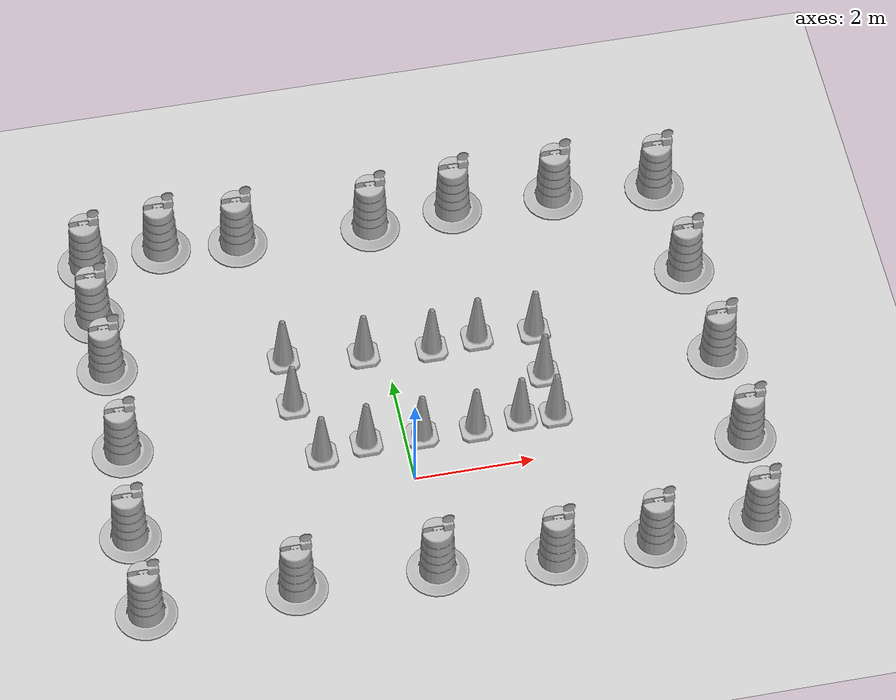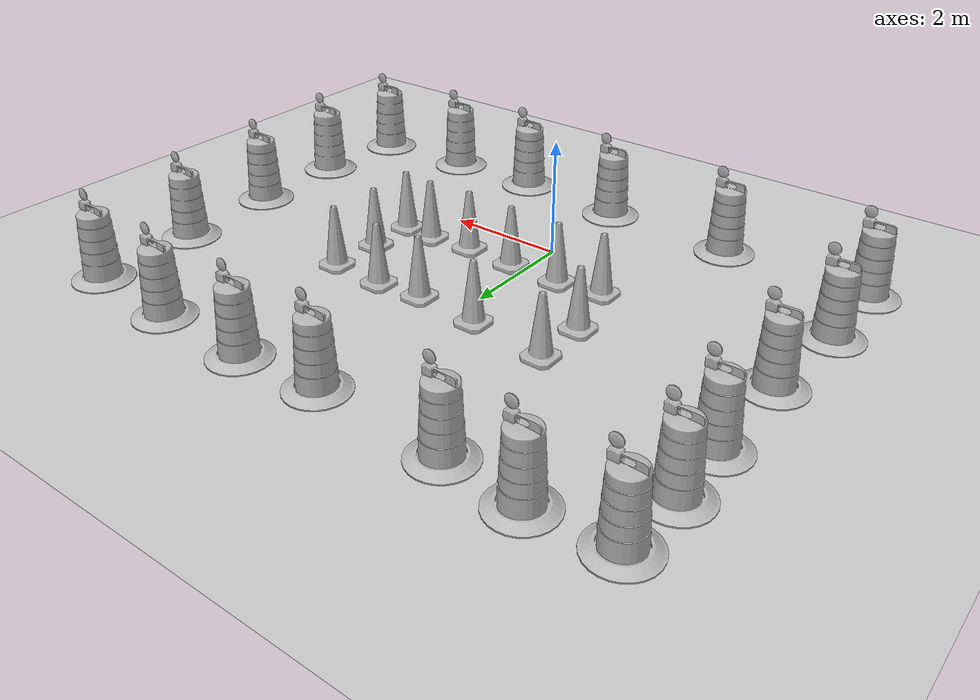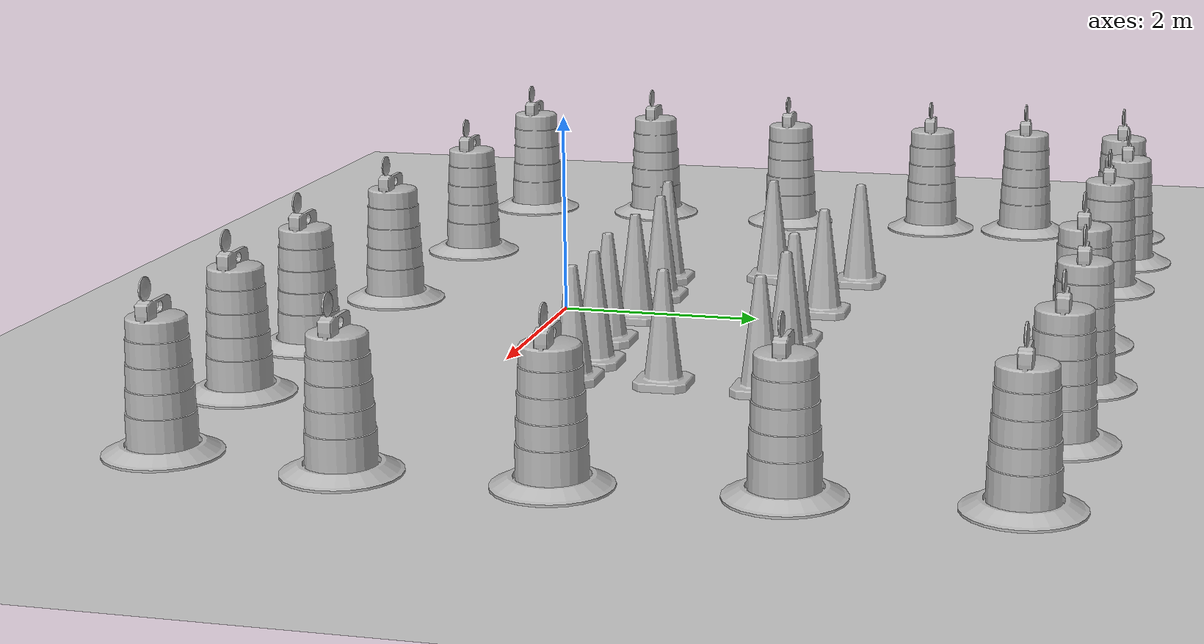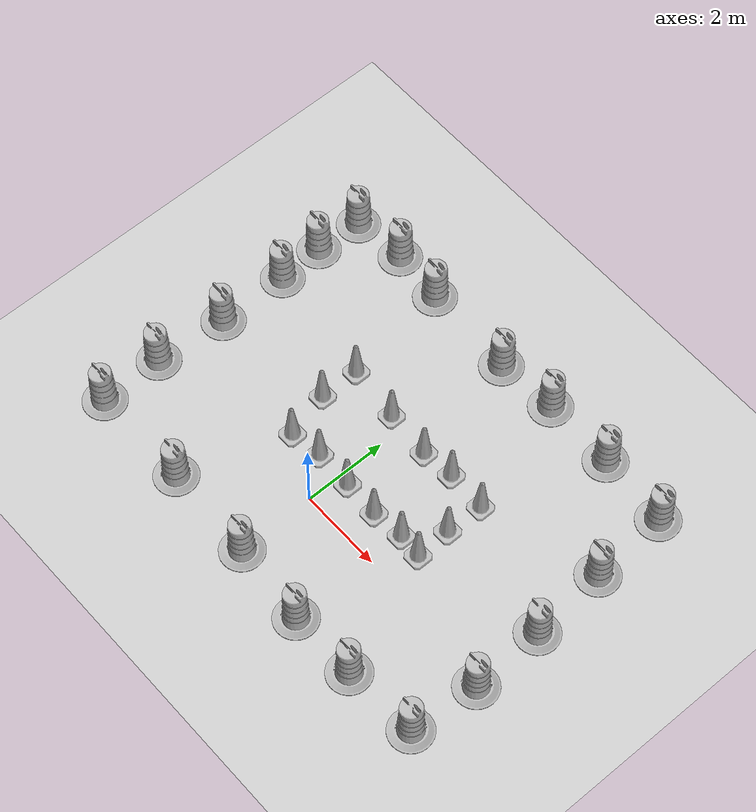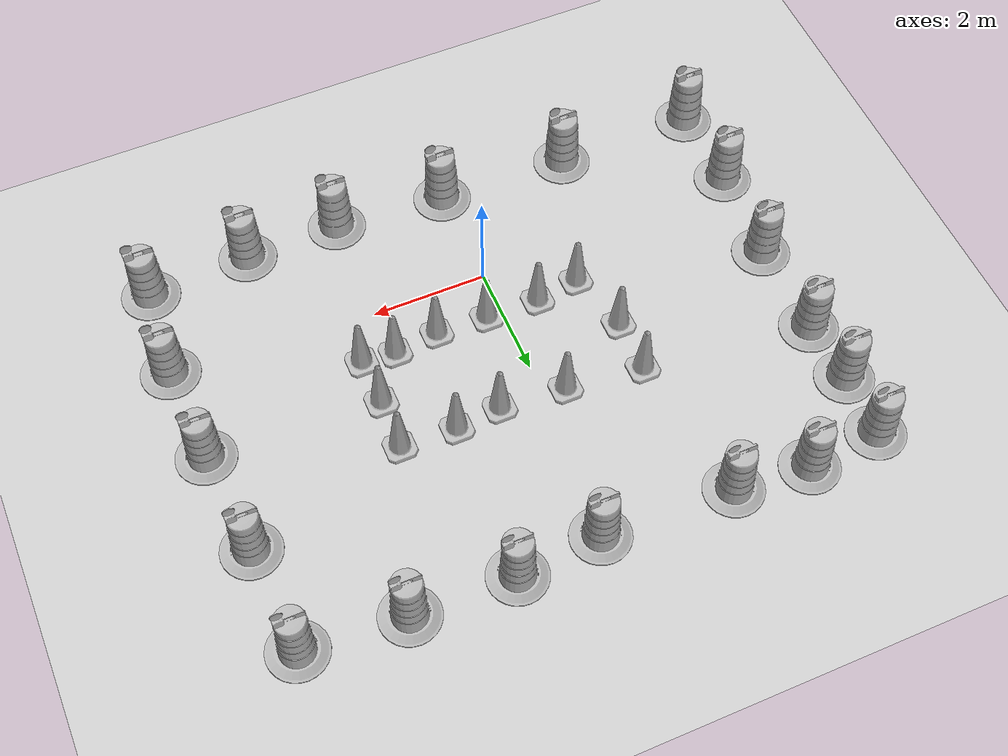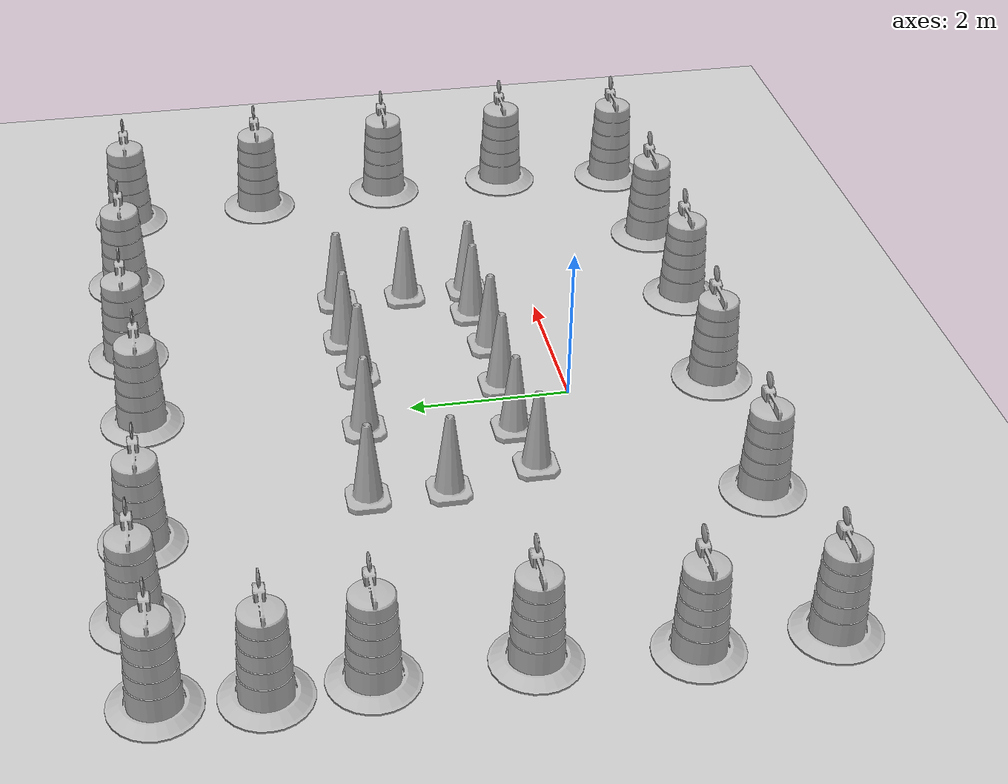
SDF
<sdf version="1.7">
 <world name="default">
  <light name="sun" type="directional">
   <pose>0 0 10 0 -0 0</pose>
   <diffuse>0.8 0.8 0.8 1</diffuse>
   <specular>0.2 0.2 0.2 1</specular>
   <attenuation>
    <range>1000</range>
    <constant>0.9</constant>
    <linear>0.01</linear>
    <quadratic>0.001</quadratic>
   </attenuation>
   <direction>-0.5 0.1 -0.9</direction>
   <spot><inner_angle>0</inner_angle><outer_angle>0</outer_angle><falloff>0</falloff></spot>
  </light>
  <model name="ground_plane">
   <static>1</static>
   <link name="link">
    <collision name="collision">
     <geometry><plane><normal>0 0 1</normal><size>100 100</size></plane></geometry>
     <surface>
      <contact><collide_bitmask>65535</collide_bitmask></contact>
      <friction><ode><mu>100</mu><mu2>50</mu2></ode></friction>
     </surface>
    </collision>
    <visual name="visual">
     <cast_shadows>0</cast_shadows>
     <geometry><plane><normal>0 0 1</normal><size>100 100</size></plane></geometry>
     <material>
      <script><uri>file://media/materials/scripts/gazebo.material</uri><name>Gazebo/Grey</name></script>
     </material>
    </visual>
   </link>
  </model>
  <gravity>0 0 -9.8</gravity>
  <magnetic_field>6e-06 2.3e-05 -4.2e-05</magnetic_field>
  <atmosphere type="adiabatic"/>
  <physics type="ode">
   <max_step_size>0.001</max_step_size>
   <real_time_factor>1</real_time_factor>
   <real_time_update_rate>1000</real_time_update_rate>
  </physics>
  <scene><ambient>0.4 0.4 0.4 1</ambient><background>0.7 0.7 0.7 1</background><shadows>1</shadows></scene>
  <spherical_coordinates>
   <surface_model>EARTH_WGS84</surface_model>
   <latitude_deg>0</latitude_deg>
   <longitude_deg>0</longitude_deg>
   <elevation>0</elevation>
   <heading_deg>0</heading_deg>
  </spherical_coordinates>
  <model name="Construction Barrel">
   <link name="link">
    <inertial>
     <pose>0 0 0.4 0 -0 0</pose>
     <mass>500</mass>
     <inertia><ixx>51.2096</ixx><iyy>51.2096</iyy><izz>25</izz><ixy>0</ixy><ixz>0</ixz><iyz>0</iyz></inertia>
    </inertial>
    <collision name="collision">
     <geometry><mesh><uri>model://construction_barrel/meshes/construction_barrel.dae</uri></mesh></geometry>
    </collision>
    <visual name="visual">
     <geometry><mesh><uri>model://construction_barrel/meshes/construction_barrel.dae</uri></mesh></geometry>
    </visual>
   </link>
   <pose>-4.64677 3.14419 -2e-06 4e-06 7e-06 -0.000134</pose>
  </model>
  <model name="Construction Barrel_0">
   <link name="link">
    <inertial>
     <pose>0 0 0.4 0 -0 0</pose>
     <mass>500</mass>
     <inertia><ixx>51.2096</ixx><iyy>51.2096</iyy><izz>25</izz><ixy>0</ixy><ixz>0</ixz><iyz>0</iyz></inertia>
    </inertial>
    <collision name="collision">
     <geometry><mesh><uri>model://construction_barrel/meshes/construction_barrel.dae</uri></mesh></geometry>
    </collision>
    <visual name="visual">
     <geometry><mesh><uri>model://construction_barrel/meshes/construction_barrel.dae</uri></mesh></geometry>
    </visual>
   </link>
   <pose>-4.64797 1.43609 0 0 -0 -0.000111</pose>
  </model>
  <model name="Construction Barrel_1">
   <link name="link">
    <inertial>
     <pose>0 0 0.4 0 -0 0</pose>
     <mass>500</mass>
     <inertia><ixx>51.2096</ixx><iyy>51.2096</iyy><izz>25</izz><ixy>0</ixy><ixz>0</ixz><iyz>0</iyz></inertia>
    </inertial>
    <collision name="collision">
     <geometry><mesh><uri>model://construction_barrel/meshes/construction_barrel.dae</uri></mesh></geometry>
    </collision>
    <visual name="visual">
     <geometry><mesh><uri>model://construction_barrel/meshes/construction_barrel.dae</uri></mesh></geometry>
    </visual>
   </link>
   <pose>3.47135 5.35729 0 0 -0 3.3e-05</pose>
  </model>
  <model name="Construction Barrel_2">
   <link name="link">
    <inertial>
     <pose>0 0 0.4 0 -0 0</pose>
     <mass>500</mass>
     <inertia><ixx>51.2096</ixx><iyy>51.2096</iyy><izz>25</izz><ixy>0</ixy><ixz>0</ixz><iyz>0</iyz></inertia>
    </inertial>
    <collision name="collision">
     <geometry><mesh><uri>model://construction_barrel/meshes/construction_barrel.dae</uri></mesh></geometry>
    </collision>
    <visual name="visual">
     <geometry><mesh><uri>model://construction_barrel/meshes/construction_barrel.dae</uri></mesh></geometry>
    </visual>
   </link>
   <pose>-2.29614 -1.78495 -4e-06 -5e-06 -7e-06 -5.4e-05</pose>
  </model>
  <model name="Construction Barrel_3">
   <link name="link">
    <inertial>
     <pose>0 0 0.4 0 -0 0</pose>
     <mass>500</mass>
     <inertia><ixx>51.2096</ixx><iyy>51.2096</iyy><izz>25</izz><ixy>0</ixy><ixz>0</ixz><iyz>0</iyz></inertia>
    </inertial>
    <collision name="collision">
     <geometry><mesh><uri>model://construction_barrel/meshes/construction_barrel.dae</uri></mesh></geometry>
    </collision>
    <visual name="visual">
     <geometry><mesh><uri>model://construction_barrel/meshes/construction_barrel.dae</uri></mesh></geometry>
    </visual>
   </link>
   <pose>0.006793 -1.8623 -1e-06 5e-06 -3e-06 -3.6e-05</pose>
  </model>
  <model name="Construction Barrel_4">
   <link name="link">
    <inertial>
     <pose>0 0 0.4 0 -0 0</pose>
     <mass>500</mass>
     <inertia><ixx>51.2096</ixx><iyy>51.2096</iyy><izz>25</izz><ixy>0</ixy><ixz>0</ixz><iyz>0</iyz></inertia>
    </inertial>
    <collision name="collision">
     <geometry><mesh><uri>model://construction_barrel/meshes/construction_barrel.dae</uri></mesh></geometry>
    </collision>
    <visual name="visual">
     <geometry><mesh><uri>model://construction_barrel/meshes/construction_barrel.dae</uri></mesh></geometry>
    </visual>
   </link>
   <pose>-4.7616 -1.78931 0 0 0 -0.000122</pose>
  </model>
  <model name="Construction Barrel_5">
   <link name="link">
    <inertial>
     <pose>0 0 0.4 0 -0 0</pose>
     <mass>500</mass>
     <inertia><ixx>51.2096</ixx><iyy>51.2096</iyy><izz>25</izz><ixy>0</ixy><ixz>0</ixz><iyz>0</iyz></inertia>
    </inertial>
    <collision name="collision">
     <geometry><mesh><uri>model://construction_barrel/meshes/construction_barrel.dae</uri></mesh></geometry>
    </collision>
    <visual name="visual">
     <geometry><mesh><uri>model://construction_barrel/meshes/construction_barrel.dae</uri></mesh></geometry>
    </visual>
   </link>
   <pose>-4.64278 5.37985 -0 0 -0 -4.8e-05</pose>
  </model>
  <model name="Construction Barrel_6">
   <link name="link">
    <inertial>
     <pose>0 0 0.4 0 -0 0</pose>
     <mass>500</mass>
     <inertia><ixx>51.2096</ixx><iyy>51.2096</iyy><izz>25</izz><ixy>0</ixy><ixz>0</ixz><iyz>0</iyz></inertia>
    </inertial>
    <collision name="collision">
     <geometry><mesh><uri>model://construction_barrel/meshes/construction_barrel.dae</uri></mesh></geometry>
    </collision>
    <visual name="visual">
     <geometry><mesh><uri>model://construction_barrel/meshes/construction_barrel.dae</uri></mesh></geometry>
    </visual>
   </link>
   <pose>-2.04519 5.38342 -1e-06 -8e-06 -2e-06 -0.000106</pose>
  </model>
  <model name="Construction Barrel_7">
   <link name="link">
    <inertial>
     <pose>0 0 0.4 0 -0 0</pose>
     <mass>500</mass>
     <inertia><ixx>51.2096</ixx><iyy>51.2096</iyy><izz>25</izz><ixy>0</ixy><ixz>0</ixz><iyz>0</iyz></inertia>
    </inertial>
    <collision name="collision">
     <geometry><mesh><uri>model://construction_barrel/meshes/construction_barrel.dae</uri></mesh></geometry>
    </collision>
    <visual name="visual">
     <geometry><mesh><uri>model://construction_barrel/meshes/construction_barrel.dae</uri></mesh></geometry>
    </visual>
   </link>
   <pose>0.245001 5.28789 -4e-06 -5e-06 -7e-06 -5.3e-05</pose>
  </model>
  <model name="Construction Cone">
   <link name="link">
    <collision name="collision">
     <geometry>
      <mesh><scale>10 10 10</scale><uri>model://construction_cone/meshes/construction_cone.dae</uri></mesh>
     </geometry>
    </collision>
    <visual name="visual">
     <geometry>
      <mesh><scale>10 10 10</scale><uri>model://construction_cone/meshes/construction_cone.dae</uri></mesh>
     </geometry>
    </visual>
    <inertial>
     <inertia><ixx>1</ixx><ixy>0</ixy><ixz>0</ixz><iyy>1</iyy><iyz>0</iyz><izz>1</izz></inertia>
     <mass>1</mass>
    </inertial>
   </link>
   <pose>-1.42727 0.725176 -0 0 -1e-06 0</pose>
  </model>
  <model name="Construction Cone_0">
   <link name="link">
    <collision name="collision">
     <geometry>
      <mesh><scale>10 10 10</scale><uri>model://construction_cone/meshes/construction_cone.dae</uri></mesh>
     </geometry>
    </collision>
    <visual name="visual">
     <geometry>
      <mesh><scale>10 10 10</scale><uri>model://construction_cone/meshes/construction_cone.dae</uri></mesh>
     </geometry>
    </visual>
    <inertial>
     <inertia><ixx>1</ixx><ixy>0</ixy><ixz>0</ixz><iyy>1</iyy><iyz>0</iyz><izz>1</izz></inertia>
     <mass>1</mass>
    </inertial>
   </link>
   <pose>-1.71742 1.82458 -1e-05 0 -0 0</pose>
  </model>
  <model name="Construction Cone_1">
   <link name="link">
    <collision name="collision">
     <geometry>
      <mesh><scale>10 10 10</scale><uri>model://construction_cone/meshes/construction_cone.dae</uri></mesh>
     </geometry>
    </collision>
    <visual name="visual">
     <geometry>
      <mesh><scale>10 10 10</scale><uri>model://construction_cone/meshes/construction_cone.dae</uri></mesh>
     </geometry>
    </visual>
    <inertial>
     <inertia><ixx>1</ixx><ixy>0</ixy><ixz>0</ixz><iyy>1</iyy><iyz>0</iyz><izz>1</izz></inertia>
     <mass>1</mass>
    </inertial>
   </link>
   <pose>-1.70964 2.77918 -5e-06 -4e-06 1e-06 0</pose>
  </model>
  <model name="Construction Cone_2">
   <link name="link">
    <collision name="collision">
     <geometry>
      <mesh><scale>10 10 10</scale><uri>model://construction_cone/meshes/construction_cone.dae</uri></mesh>
     </geometry>
    </collision>
    <visual name="visual">
     <geometry>
      <mesh><scale>10 10 10</scale><uri>model://construction_cone/meshes/construction_cone.dae</uri></mesh>
     </geometry>
    </visual>
    <inertial>
     <inertia><ixx>1</ixx><ixy>0</ixy><ixz>0</ixz><iyy>1</iyy><iyz>0</iyz><izz>1</izz></inertia>
     <mass>1</mass>
    </inertial>
   </link>
   <pose>-0.366673 2.62836 -6e-06 2e-06 -1e-06 -0</pose>
  </model>
  <model name="Construction Cone_3">
   <link name="link">
    <collision name="collision">
     <geometry>
      <mesh><scale>10 10 10</scale><uri>model://construction_cone/meshes/construction_cone.dae</uri></mesh>
     </geometry>
    </collision>
    <visual name="visual">
     <geometry>
      <mesh><scale>10 10 10</scale><uri>model://construction_cone/meshes/construction_cone.dae</uri></mesh>
     </geometry>
    </visual>
    <inertial>
     <inertia><ixx>1</ixx><ixy>0</ixy><ixz>0</ixz><iyy>1</iyy><iyz>0</iyz><izz>1</izz></inertia>
     <mass>1</mass>
    </inertial>
   </link>
   <pose>0.778519 2.54343 -0 0 -1e-06 0</pose>
  </model>
  <model name="Construction Cone_4">
   <link name="link">
    <collision name="collision">
     <geometry>
      <mesh><scale>10 10 10</scale><uri>model://construction_cone/meshes/construction_cone.dae</uri></mesh>
     </geometry>
    </collision>
    <visual name="visual">
     <geometry>
      <mesh><scale>10 10 10</scale><uri>model://construction_cone/meshes/construction_cone.dae</uri></mesh>
     </geometry>
    </visual>
    <inertial>
     <inertia><ixx>1</ixx><ixy>0</ixy><ixz>0</ixz><iyy>1</iyy><iyz>0</iyz><izz>1</izz></inertia>
     <mass>1</mass>
    </inertial>
   </link>
   <pose>1.57171 2.6233 -1e-05 0 -0 0</pose>
  </model>
  <model name="Construction Cone_5">
   <link name="link">
    <collision name="collision">
     <geometry>
      <mesh><scale>10 10 10</scale><uri>model://construction_cone/meshes/construction_cone.dae</uri></mesh>
     </geometry>
    </collision>
    <visual name="visual">
     <geometry>
      <mesh><scale>10 10 10</scale><uri>model://construction_cone/meshes/construction_cone.dae</uri></mesh>
     </geometry>
    </visual>
    <inertial>
     <inertia><ixx>1</ixx><ixy>0</ixy><ixz>0</ixz><iyy>1</iyy><iyz>0</iyz><izz>1</izz></inertia>
     <mass>1</mass>
    </inertial>
   </link>
   <pose>2.54785 2.58116 -0 0 -1e-06 0</pose>
  </model>
  <model name="Construction Cone_6">
   <link name="link">
    <collision name="collision">
     <geometry>
      <mesh><scale>10 10 10</scale><uri>model://construction_cone/meshes/construction_cone.dae</uri></mesh>
     </geometry>
    </collision>
    <visual name="visual">
     <geometry>
      <mesh><scale>10 10 10</scale><uri>model://construction_cone/meshes/construction_cone.dae</uri></mesh>
     </geometry>
    </visual>
    <inertial>
     <inertia><ixx>1</ixx><ixy>0</ixy><ixz>0</ixz><iyy>1</iyy><iyz>0</iyz><izz>1</izz></inertia>
     <mass>1</mass>
    </inertial>
   </link>
   <pose>2.51921 1.67177 -0 0 -1e-06 0</pose>
  </model>
  <model name="Construction Cone_7">
   <link name="link">
    <collision name="collision">
     <geometry>
      <mesh><scale>10 10 10</scale><uri>model://construction_cone/meshes/construction_cone.dae</uri></mesh>
     </geometry>
    </collision>
    <visual name="visual">
     <geometry>
      <mesh><scale>10 10 10</scale><uri>model://construction_cone/meshes/construction_cone.dae</uri></mesh>
     </geometry>
    </visual>
    <inertial>
     <inertia><ixx>1</ixx><ixy>0</ixy><ixz>0</ixz><iyy>1</iyy><iyz>0</iyz><izz>1</izz></inertia>
     <mass>1</mass>
    </inertial>
   </link>
   <pose>2.54136 0.82004 -0 0 -1e-06 0</pose>
  </model>
  <model name="Construction Cone_8">
   <link name="link">
    <collision name="collision">
     <geometry>
      <mesh><scale>10 10 10</scale><uri>model://construction_cone/meshes/construction_cone.dae</uri></mesh>
     </geometry>
    </collision>
    <visual name="visual">
     <geometry>
      <mesh><scale>10 10 10</scale><uri>model://construction_cone/meshes/construction_cone.dae</uri></mesh>
     </geometry>
    </visual>
    <inertial>
     <inertia><ixx>1</ixx><ixy>0</ixy><ixz>0</ixz><iyy>1</iyy><iyz>0</iyz><izz>1</izz></inertia>
     <mass>1</mass>
    </inertial>
   </link>
   <pose>1.17835 0.78152 0 -0 -0 -0</pose>
  </model>
  <model name="Construction Cone_9">
   <link name="link">
    <collision name="collision">
     <geometry>
      <mesh><scale>10 10 10</scale><uri>model://construction_cone/meshes/construction_cone.dae</uri></mesh>
     </geometry>
    </collision>
    <visual name="visual">
     <geometry>
      <mesh><scale>10 10 10</scale><uri>model://construction_cone/meshes/construction_cone.dae</uri></mesh>
     </geometry>
    </visual>
    <inertial>
     <inertia><ixx>1</ixx><ixy>0</ixy><ixz>0</ixz><iyy>1</iyy><iyz>0</iyz><izz>1</izz></inertia>
     <mass>1</mass>
    </inertial>
   </link>
   <pose>0.277502 0.817472 -0 0 -1e-06 0</pose>
  </model>
  <model name="Construction Barrel_8">
   <link name="link">
    <inertial>
     <pose>0 0 0.4 0 -0 0</pose>
     <mass>500</mass>
     <inertia><ixx>51.2096</ixx><iyy>51.2096</iyy><izz>25</izz><ixy>0</ixy><ixz>0</ixz><iyz>0</iyz></inertia>
    </inertial>
    <collision name="collision">
     <geometry><mesh><uri>model://construction_barrel/meshes/construction_barrel.dae</uri></mesh></geometry>
    </collision>
    <visual name="visual">
     <geometry><mesh><uri>model://construction_barrel/meshes/construction_barrel.dae</uri></mesh></geometry>
    </visual>
   </link>
   <pose>5.22546 5.21985 0 0 0 -4.5e-05</pose>
  </model>
  <model name="Construction Cone_10">
   <link name="link">
    <collision name="collision">
     <geometry>
      <mesh><scale>10 10 10</scale><uri>model://construction_cone/meshes/construction_cone.dae</uri></mesh>
     </geometry>
    </collision>
    <visual name="visual">
     <geometry>
      <mesh><scale>10 10 10</scale><uri>model://construction_cone/meshes/construction_cone.dae</uri></mesh>
     </geometry>
    </visual>
    <inertial>
     <inertia><ixx>1</ixx><ixy>0</ixy><ixz>0</ixz><iyy>1</iyy><iyz>0</iyz><izz>1</izz></inertia>
     <mass>1</mass>
    </inertial>
   </link>
   <pose>-0.655941 0.839068 -0 0 -1e-06 0</pose>
  </model>
  <model name="Construction Cone_11">
   <link name="link">
    <collision name="collision">
     <geometry>
      <mesh><scale>10 10 10</scale><uri>model://construction_cone/meshes/construction_cone.dae</uri></mesh>
     </geometry>
    </collision>
    <visual name="visual">
     <geometry>
      <mesh><scale>10 10 10</scale><uri>model://construction_cone/meshes/construction_cone.dae</uri></mesh>
     </geometry>
    </visual>
    <inertial>
     <inertia><ixx>1</ixx><ixy>0</ixy><ixz>0</ixz><iyy>1</iyy><iyz>0</iyz><izz>1</izz></inertia>
     <mass>1</mass>
    </inertial>
   </link>
   <pose>1.95831 0.867287 -0 0 -1e-06 0</pose>
  </model>
  <model name="Construction Barrel_9">
   <link name="link">
    <inertial>
     <pose>0 0 0.4 0 -0 0</pose>
     <mass>500</mass>
     <inertia><ixx>51.2096</ixx><iyy>51.2096</iyy><izz>25</izz><ixy>0</ixy><ixz>0</ixz><iyz>0</iyz></inertia>
    </inertial>
    <collision name="collision">
     <geometry><mesh><uri>model://construction_barrel/meshes/construction_barrel.dae</uri></mesh></geometry>
    </collision>
    <visual name="visual">
     <geometry><mesh><uri>model://construction_barrel/meshes/construction_barrel.dae</uri></mesh></geometry>
    </visual>
   </link>
   <pose>5.33008 3.36524 -0 0 -0 -2.4e-05</pose>
  </model>
  <model name="Construction Barrel_10">
   <link name="link">
    <inertial>
     <pose>0 0 0.4 0 -0 0</pose>
     <mass>500</mass>
     <inertia><ixx>51.2096</ixx><iyy>51.2096</iyy><izz>25</izz><ixy>0</ixy><ixz>0</ixz><iyz>0</iyz></inertia>
    </inertial>
    <collision name="collision">
     <geometry><mesh><uri>model://construction_barrel/meshes/construction_barrel.dae</uri></mesh></geometry>
    </collision>
    <visual name="visual">
     <geometry><mesh><uri>model://construction_barrel/meshes/construction_barrel.dae</uri></mesh></geometry>
    </visual>
   </link>
   <pose>5.47285 1.51123 -1e-06 2e-06 -1e-06 -2.8e-05</pose>
  </model>
  <model name="Construction Barrel_11">
   <link name="link">
    <inertial>
     <pose>0 0 0.4 0 -0 0</pose>
     <mass>500</mass>
     <inertia><ixx>51.2096</ixx><iyy>51.2096</iyy><izz>25</izz><ixy>0</ixy><ixz>0</ixz><iyz>0</iyz></inertia>
    </inertial>
    <collision name="collision">
     <geometry><mesh><uri>model://construction_barrel/meshes/construction_barrel.dae</uri></mesh></geometry>
    </collision>
    <visual name="visual">
     <geometry><mesh><uri>model://construction_barrel/meshes/construction_barrel.dae</uri></mesh></geometry>
    </visual>
   </link>
   <pose>5.53205 -0.244653 0 0 0 -2.6e-05</pose>
  </model>
  <model name="Construction Barrel_12">
   <link name="link">
    <inertial>
     <pose>0 0 0.4 0 -0 0</pose>
     <mass>500</mass>
     <inertia><ixx>51.2096</ixx><iyy>51.2096</iyy><izz>25</izz><ixy>0</ixy><ixz>0</ixz><iyz>0</iyz></inertia>
    </inertial>
    <collision name="collision">
     <geometry><mesh><uri>model://construction_barrel/meshes/construction_barrel.dae</uri></mesh></geometry>
    </collision>
    <visual name="visual">
     <geometry><mesh><uri>model://construction_barrel/meshes/construction_barrel.dae</uri></mesh></geometry>
    </visual>
   </link>
   <pose>5.38027 -1.88314 0 0 0 -2.5e-05</pose>
  </model>
  <model name="Construction Barrel_13">
   <link name="link">
    <inertial>
     <pose>0 0 0.4 0 -0 0</pose>
     <mass>500</mass>
     <inertia><ixx>51.2096</ixx><iyy>51.2096</iyy><izz>25</izz><ixy>0</ixy><ixz>0</ixz><iyz>0</iyz></inertia>
    </inertial>
    <collision name="collision">
     <geometry><mesh><uri>model://construction_barrel/meshes/construction_barrel.dae</uri></mesh></geometry>
    </collision>
    <visual name="visual">
     <geometry><mesh><uri>model://construction_barrel/meshes/construction_barrel.dae</uri></mesh></geometry>
    </visual>
   </link>
   <pose>3.601 -1.99268 -4e-06 -5e-06 -7e-06 -2.5e-05</pose>
  </model>
  <model name="Construction Barrel_14">
   <link name="link">
    <inertial>
     <pose>0 0 0.4 0 -0 0</pose>
     <mass>500</mass>
     <inertia><ixx>51.2096</ixx><iyy>51.2096</iyy><izz>25</izz><ixy>0</ixy><ixz>0</ixz><iyz>0</iyz></inertia>
    </inertial>
    <collision name="collision">
     <geometry><mesh><uri>model://construction_barrel/meshes/construction_barrel.dae</uri></mesh></geometry>
    </collision>
    <visual name="visual">
     <geometry><mesh><uri>model://construction_barrel/meshes/construction_barrel.dae</uri></mesh></geometry>
    </visual>
   </link>
   <pose>1.94731 -2.01893 -0 0 0 -3.3e-05</pose>
  </model>
  <model name="Construction Barrel_15">
   <link name="link">
    <inertial>
     <pose>0 0 0.4 0 -0 0</pose>
     <mass>500</mass>
     <inertia><ixx>51.2096</ixx><iyy>51.2096</iyy><izz>25</izz><ixy>0</ixy><ixz>0</ixz><iyz>0</iyz></inertia>
    </inertial>
    <collision name="collision">
     <geometry><mesh><uri>model://construction_barrel/meshes/construction_barrel.dae</uri></mesh></geometry>
    </collision>
    <visual name="visual">
     <geometry><mesh><uri>model://construction_barrel/meshes/construction_barrel.dae</uri></mesh></geometry>
    </visual>
   </link>
   <pose>-4.78663 -0.274831 -3e-06 -6e-06 -5e-06 -1.8e-05</pose>
  </model>
  <model name="Construction Barrel_16">
   <link name="link">
    <inertial>
     <pose>0 0 0.4 0 -0 0</pose>
     <mass>500</mass>
     <inertia><ixx>51.2096</ixx><iyy>51.2096</iyy><izz>25</izz><ixy>0</ixy><ixz>0</ixz><iyz>0</iyz></inertia>
    </inertial>
    <collision name="collision">
     <geometry><mesh><uri>model://construction_barrel/meshes/construction_barrel.dae</uri></mesh></geometry>
    </collision>
    <visual name="visual">
     <geometry><mesh><uri>model://construction_barrel/meshes/construction_barrel.dae</uri></mesh></geometry>
    </visual>
   </link>
   <pose>1.70635 5.39735 -1e-06 4e-06 -1e-06 -1.7e-05</pose>
  </model>
  <model name="Construction Barrel_17">
   <link name="link">
    <inertial>
     <pose>0 0 0.4 0 -0 0</pose>
     <mass>500</mass>
     <inertia><ixx>51.2096</ixx><iyy>51.2096</iyy><izz>25</izz><ixy>0</ixy><ixz>0</ixz><iyz>0</iyz></inertia>
    </inertial>
    <collision name="collision">
     <geometry><mesh><uri>model://construction_barrel/meshes/construction_barrel.dae</uri></mesh></geometry>
    </collision>
    <visual name="visual">
     <geometry><mesh><uri>model://construction_barrel/meshes/construction_barrel.dae</uri></mesh></geometry>
    </visual>
   </link>
   <pose>-3.35331 5.50345 -2e-06 8e-06 -4e-06 -1.6e-05</pose>
  </model>
  <model name="Construction Barrel_18">
   <link name="link">
    <inertial>
     <pose>0 0 0.4 0 -0 0</pose>
     <mass>500</mass>
     <inertia><ixx>51.2096</ixx><iyy>51.2096</iyy><izz>25</izz><ixy>0</ixy><ixz>0</ixz><iyz>0</iyz></inertia>
    </inertial>
    <collision name="collision">
     <geometry><mesh><uri>model://construction_barrel/meshes/construction_barrel.dae</uri></mesh></geometry>
    </collision>
    <visual name="visual">
     <geometry><mesh><uri>model://construction_barrel/meshes/construction_barrel.dae</uri></mesh></geometry>
    </visual>
   </link>
   <pose>-4.70111 4.25225 0 1e-06 1e-06 -1.4e-05</pose>
  </model>
 </world>
</sdf>
